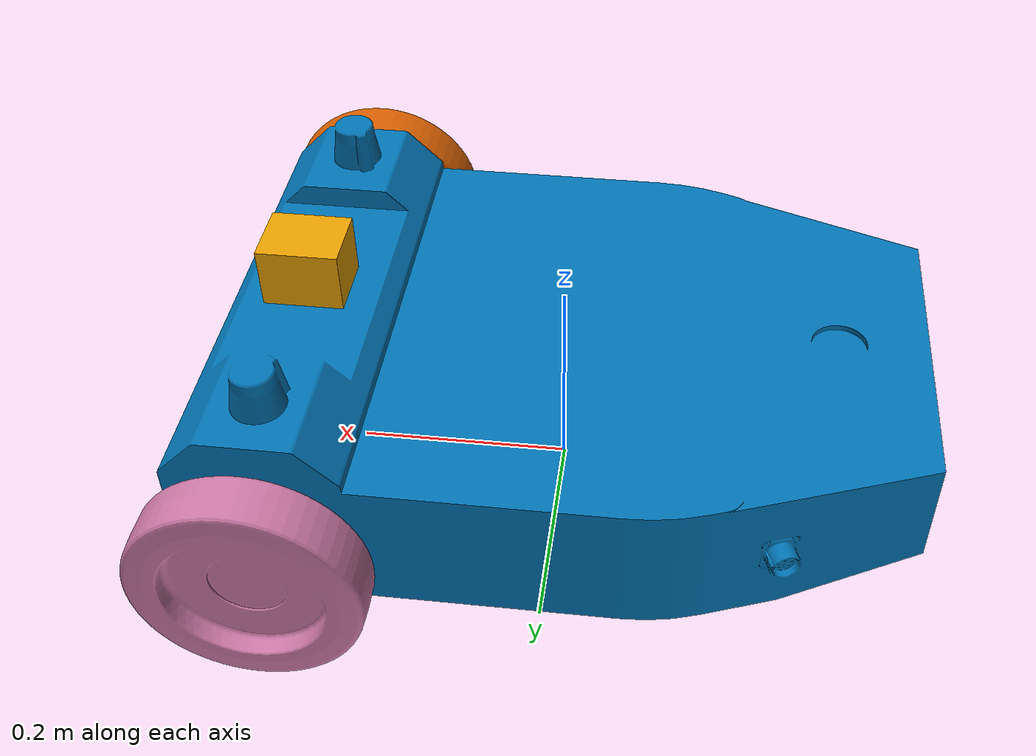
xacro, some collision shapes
<?xml version="1.0"?>
<robot xmlns:xacro="http://www.ros.org/wiki/xacro" name="rby1_base_holonomic">

  <xacro:arg name="mesh_root" default="ruby/rby1_description_drake/meshes"/>
  <xacro:property name="mesh_dir" value="$(arg mesh_root)"/>

  <!-- Root of the kinematic tree that the floating base joints hang off of. -->
  <link name="world"/>

  <!-- Links -->

  <link name="base_x"/>
  <link name="base_y"/>
  <link name="base_z"/>

  <link name="base">
    <inertial>
      <mass value="60.08042639"/>
      <origin rpy="0 0 0" xyz="-0.06157942 -0.00142271 0.13513861"/>
      <inertia ixx="1.37742174" ixy="0.02521789" ixz="0.18565467" iyy="2.99386515" iyz="-0.00641869"
        izz="3.76085052"/>
    </inertial>

    <visual>
      <origin xyz="0 0 0" rpy="1.57079632679 0 0"/>
      <geometry>
        <mesh filename="${mesh_dir}/BASE.obj"/>
      </geometry>
    </visual>

    <!-- Front axle area -->
    <collision>
      <origin xyz="0.23 0.175 0.13" rpy="0 0 0"/>
      <geometry>
        <sphere radius="0.1"/>
      </geometry>
    </collision>
    <collision>
      <origin xyz="0.23 0.075 0.125" rpy="0 0 0"/>
      <geometry>
        <sphere radius="0.1"/>
      </geometry>
    </collision>
    <collision>
      <origin xyz="0.23 0 0.125" rpy="0 0 0"/>
      <geometry>
        <sphere radius="0.1"/>
      </geometry>
    </collision>
    <collision>
      <origin xyz="0.23 -0.075 0.125" rpy="0 0 0"/>
      <geometry>
        <sphere radius="0.1"/>
      </geometry>
    </collision>
    <collision>
      <origin xyz="0.23 -0.175 0.13" rpy="0 0 0"/>
      <geometry>
        <sphere radius="0.1"/>
      </geometry>
    </collision>

    <!-- Lidars -->
    <collision>
      <origin xyz="0.225 0.1725 0.24" rpy="0 0 0"/>
      <geometry>
        <sphere radius="0.03"/>
      </geometry>
    </collision>
    <collision>
      <origin xyz="0.225 -0.1725 0.24" rpy="0 0 0"/>
      <geometry>
        <sphere radius="0.03"/>
      </geometry>
    </collision>

    <!-- Mid/rear body -->
    <collision>
      <origin xyz="0.12 0.175 0.11" rpy="0 0 0"/>
      <geometry>
        <sphere radius="0.08"/>
      </geometry>
    </collision>
    <collision>
      <origin xyz="0.12 -0.175 0.11" rpy="0 0 0"/>
      <geometry>
        <sphere radius="0.08"/>
      </geometry>
    </collision>

    <collision>
      <origin xyz="0.01 0.175 0.11" rpy="0 0 0"/>
      <geometry>
        <sphere radius="0.08"/>
      </geometry>
    </collision>
    <collision>
      <origin xyz="0.01 -0.175 0.11" rpy="0 0 0"/>
      <geometry>
        <sphere radius="0.08"/>
      </geometry>
    </collision>

    <collision>
      <origin xyz="-0.1 0.175 0.11" rpy="0 0 0"/>
      <geometry>
        <sphere radius="0.08"/>
      </geometry>
    </collision>
    <collision>
      <origin xyz="-0.1 -0.175 0.11" rpy="0 0 0"/>
      <geometry>
        <sphere radius="0.08"/>
      </geometry>
    </collision>

    <collision>
      <origin xyz="-0.2 0.15 0.11" rpy="0 0 0"/>
      <geometry>
        <sphere radius="0.08"/>
      </geometry>
    </collision>
    <collision>
      <origin xyz="-0.2 -0.15 0.11" rpy="0 0 0"/>
      <geometry>
        <sphere radius="0.08"/>
      </geometry>
    </collision>

    <collision>
      <origin xyz="-0.28 0.12 0.11" rpy="0 0 0"/>
      <geometry>
        <sphere radius="0.08"/>
      </geometry>
    </collision>
    <collision>
      <origin xyz="-0.28 0.04 0.11" rpy="0 0 0"/>
      <geometry>
        <sphere radius="0.08"/>
      </geometry>
    </collision>
    <collision>
      <origin xyz="-0.28 -0.04 0.11" rpy="0 0 0"/>
      <geometry>
        <sphere radius="0.08"/>
      </geometry>
    </collision>
    <collision>
      <origin xyz="-0.28 -0.12 0.11" rpy="0 0 0"/>
      <geometry>
        <sphere radius="0.08"/>
      </geometry>
    </collision>
  </link>

  <link name="wheel_r">
    <inertial>
      <mass value="1.37783736"/>
      <origin rpy="0 0 0" xyz="0.0 -0.00073938 0.0"/>
      <inertia ixx="0.00426657" ixy="0.0" ixz="0.0" iyy="0.00811815" iyz="0.0" izz="0.00426657"/>
    </inertial>

    <visual>
      <origin xyz="0 0 0" rpy="1.57079632679 0 0"/>
      <geometry>
        <mesh filename="${mesh_dir}/WHEEL.obj"/>
      </geometry>
    </visual>

    <collision>
      <origin xyz="0 0 0" rpy="0 0 0"/>
      <geometry>
        <sphere radius="0.1"/>
      </geometry>
    </collision>
  </link>

  <link name="wheel_l">
    <inertial>
      <mass value="1.37783736"/>
      <origin rpy="0 0 0" xyz="0.0 0.00073938 0.0"/>
      <inertia ixx="0.00426657" ixy="0.0" ixz="0.0" iyy="0.00811815" iyz="0.0" izz="0.00426657"/>
    </inertial>

    <visual>
      <origin xyz="0 0 0" rpy="1.57079632679 0 0"/>
      <geometry>
        <mesh filename="${mesh_dir}/WHEEL.obj"/>
      </geometry>
    </visual>

    <collision>
      <origin xyz="0 0 0" rpy="0 0 0"/>
      <geometry>
        <sphere radius="0.1"/>
      </geometry>
    </collision>
  </link>

  <link name="torso_mount"/>

  <!-- BEGIN: Mid-360 lidar near the front of the base -->
  <link name="lidar_mid360">
    <visual>
      <origin xyz="-0.018 0 0.015" rpy="1.5708 0 0"/>
      <geometry>
        <mesh filename="${mesh_dir}/mid-360.obj"/>
      </geometry>
    </visual>
    <collision>
      <origin xyz="-0.018 0 0.015" rpy="0 0 0"/>
      <geometry>
        <box size="0.073 0.060 0.065"/>
      </geometry>
    </collision>
  </link>
  <!-- END: Mid-360 lidar -->

  <!-- Joints -->

  <!-- Floating base: 2 prismatic (x, y) + 1 fixed (z) + 1 continuous (yaw) -->
  <joint name="base_x" type="prismatic">
    <parent link="world"/>
    <child link="base_x"/>
    <axis xyz="1 0 0"/>
    <limit effort="1000" lower="-1000" upper="1000" velocity="1000.00"/>
  </joint>
  <joint name="base_y" type="prismatic">
    <parent link="base_x"/>
    <child link="base_y"/>
    <axis xyz="0 1 0"/>
    <limit effort="1000" lower="-1000" upper="1000" velocity="1000.00"/>
  </joint>
  <joint name="base_z" type="fixed">
    <origin rpy="0 0 0" xyz="0 0 0"/>
    <parent link="base_y"/>
    <child link="base_z"/>
    <axis xyz="0 0 1"/>
  </joint>
  <joint name="base_rz" type="continuous">
    <parent link="base_z"/>
    <child link="base"/>
    <axis xyz="0 0 1"/>
  </joint>

  <transmission name="base_x_transmission">
    <type>transmission_interface/SimpleTransmission</type>
    <joint name="base_x">
      <hardwareInterface>PositionJointInterface</hardwareInterface>
    </joint>
    <actuator name="base_x_motor">
      <hardwareInterface>PositionJointInterface</hardwareInterface>
      <mechanicalReduction>1</mechanicalReduction>
    </actuator>
  </transmission>
  <transmission name="base_y_transmission">
    <type>transmission_interface/SimpleTransmission</type>
    <joint name="base_y">
      <hardwareInterface>PositionJointInterface</hardwareInterface>
    </joint>
    <actuator name="base_y_motor">
      <hardwareInterface>PositionJointInterface</hardwareInterface>
      <mechanicalReduction>1</mechanicalReduction>
    </actuator>
  </transmission>
  <transmission name="base_rz_transmission">
    <type>transmission_interface/SimpleTransmission</type>
    <joint name="base_rz">
      <hardwareInterface>PositionJointInterface</hardwareInterface>
    </joint>
    <actuator name="base_rz_motor">
      <hardwareInterface>PositionJointInterface</hardwareInterface>
      <mechanicalReduction>1</mechanicalReduction>
    </actuator>
  </transmission>

  <joint name="right_wheel" type="fixed">
    <parent link="base"/>
    <child link="wheel_r"/>
    <origin rpy="0.0 0.0 0.0" xyz="0.228 -0.265 0.1"/>
    <axis xyz="0 1 0"/>
  </joint>

  <joint name="left_wheel" type="fixed">
    <parent link="base"/>
    <child link="wheel_l"/>
    <origin rpy="0.0 0.0 0.0" xyz="0.228 0.265 0.1"/>
    <axis xyz="0 1 0"/>
  </joint>

  <joint name="torso_mount" type="fixed">
    <parent link="base"/>
    <child link="torso_mount"/>
    <origin rpy="0.0 0.0 0.0" xyz="-0.247 0.0 0.168"/>
  </joint>

  <joint name="lidar_mid360_mount" type="fixed">
    <parent link="base"/>
    <child link="lidar_mid360"/>
    <origin rpy="0.0 0.0 0.0" xyz="0.25 0.0 0.2"/>
  </joint>

</robot>
